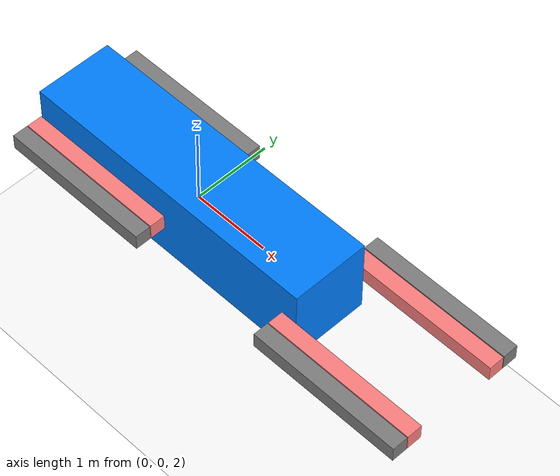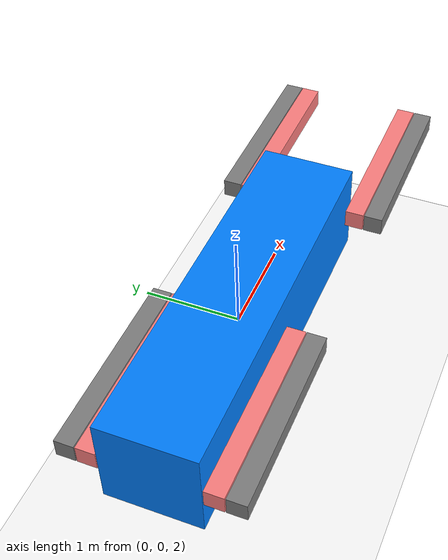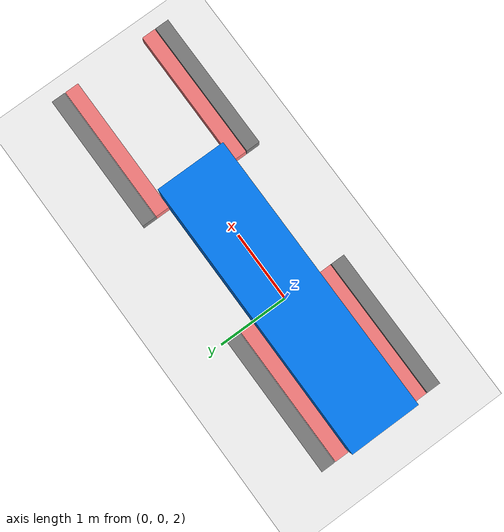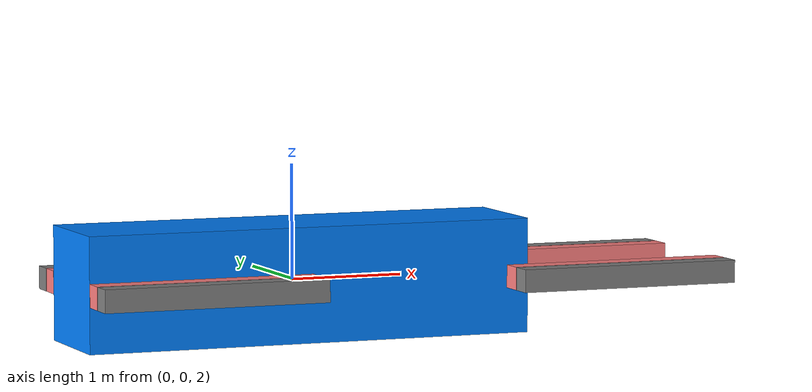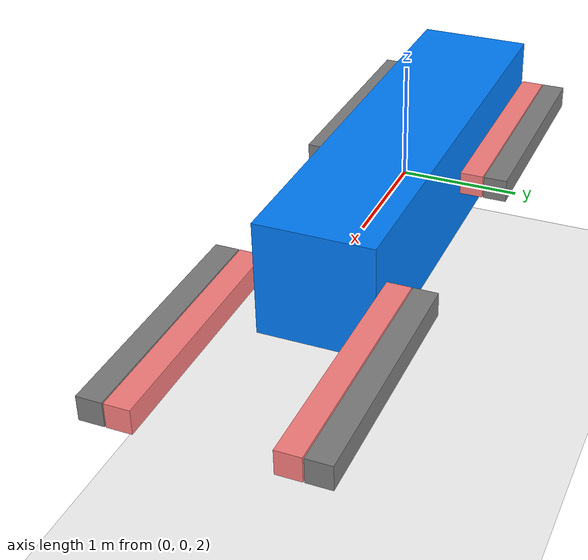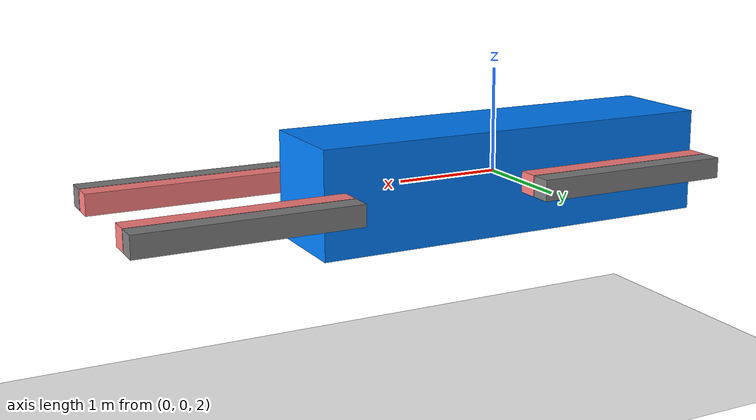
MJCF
<mujoco model="simple_box">
	<compiler angle="degree" coordinate="local"/>
	<option gravity="0 0 -9.81"/>

	<worldbody>
		<!-- 地板 -->
		<!-- friction="滑動摩擦 扭轉摩擦 滾動摩擦" -->
		<geom name="floor" type="plane" pos="0 0 0" size="10 10 0.1" rgba="10 10 10 0.3" friction="1 0.005 0.001"/>

		<!-- (dog) -->
		<body name="base" pos="0 0 2">
			<joint name="body" type="free"/>
			<geom type="box" density="10" size="2 0.5 0.5" rgba="0 0.5 1 1"/>

			<body name="left_arm" pos="-1 -0.61 0">
				<joint name="left_shoulder" type="hinge" pos="-0.9 0 0" axis="0 1 0" frictionloss="10"/>
				<geom type="box" density="10" size="1 0.1 0.1" rgba="1 0.5 0.5 1"/>

				<body name="left_hand" pos="0 -0.21 0">
					<joint name="left_elbow" type="hinge" pos="0.9 0 0" axis="0 1 0" frictionloss="10"/>
					<geom type="box" density="10" size="1 0.1 0.1" rgba="0.5 0.5 0.5 1" friction="0.1 0.002 0.0005"/>
				</body>
			</body>

			<body name="right_arm" pos="-1 0.61 0">
				<joint name="right_shoulder" type="hinge" pos="-0.9 0 0" axis="0 1 0" frictionloss="10"/>
				<geom type="box" density="10" size="1 0.1 0.1" rgba="1 0.5 0.5 1"/>

				<body name="right_hand" pos="0 0.21 0">
					<joint name="right_elbow" type="hinge" pos="0.9 0 0" axis="0 1 0" frictionloss="10"/>
					<geom type="box" density="10" size="1 0.1 0.1" rgba="0.5 0.5 0.5 1" friction="0.1 0.002 0.0005"/>
				</body>
			</body>

			<body name="left_leg" pos="2.8 -0.61 0">
				<joint name="left_hip" type="hinge" pos="-0.9 0 0" axis="0 1 0" frictionloss="10"/>
				<geom type="box" density="10" size="1 0.1 0.1" rgba="1 0.5 0.5 1"/>

				<body name="left_feet" pos="0 -0.21 0">
					<joint name="left_knee" type="hinge" pos="0.9 0 0" axis="0 1 0" frictionloss="10"/>
					<geom type="box" density="10" size="1 0.1 0.1" rgba="0.5 0.5 0.5 1" friction="0.1 0.002 0.0005"/>
				</body>
			</body>

			<body name="right_leg" pos="2.8 0.61 0">
				<joint name="right_hip" type="hinge" pos="-0.9 0 0" axis="0 1 0" frictionloss="10"/>
				<geom type="box" density="10" size="1 0.1 0.1" rgba="1 0.5 0.5 1"/>

				<body name="right_feet" pos="0 0.21 0">
					<joint name="right_knee" type="hinge" pos="0.9 0 0" axis="0 1 0" frictionloss="10"/>
					<geom type="box" density="10" size="1 0.1 0.1" rgba="0.5 0.5 0.5 1" friction="0.1 0.002 0.0005"/>
				</body>
			</body>
		</body>
	</worldbody>

	<actuator>
		<motor name="left_shoulder_motor" joint="left_shoulder" ctrlrange="-1000 1000"/>
		<motor name="left_elbow_motor" joint="left_elbow" ctrlrange="-1000 1000"/>

		<motor name="right_shoulder_motor" joint="right_shoulder" ctrlrange="-1000 1000"/>
		<motor name="right_elbow_motor" joint="right_elbow" ctrlrange="-1000 1000"/>

		<motor name="left_hip_motor" joint="left_hip" ctrlrange="-1000 1000"/>
		<motor name="left_knee_motor" joint="left_knee" ctrlrange="-1000 1000"/>

		<motor name="right_hip_motor" joint="right_hip" ctrlrange="-1000 1000"/>
		<motor name="right_knee_motor" joint="right_knee" ctrlrange="-1000 1000"/>

		<motor name="body_motor" joint="body" ctrlrange="-500 500"/>
	</actuator>

	<sensor>

	</sensor>
</mujoco>
